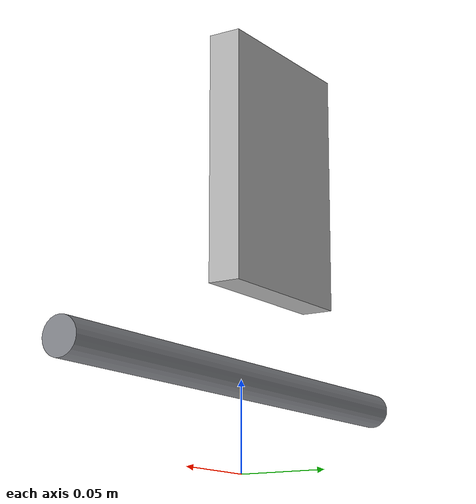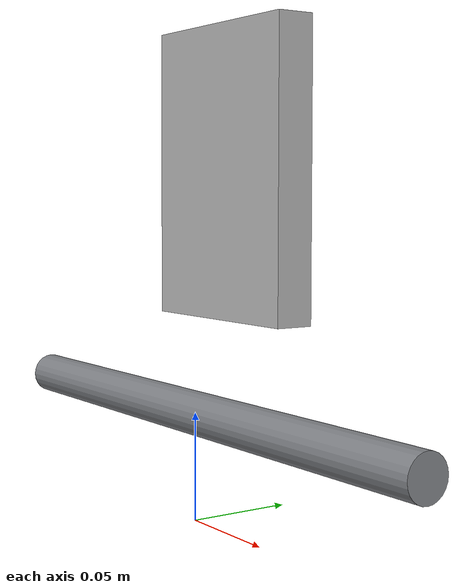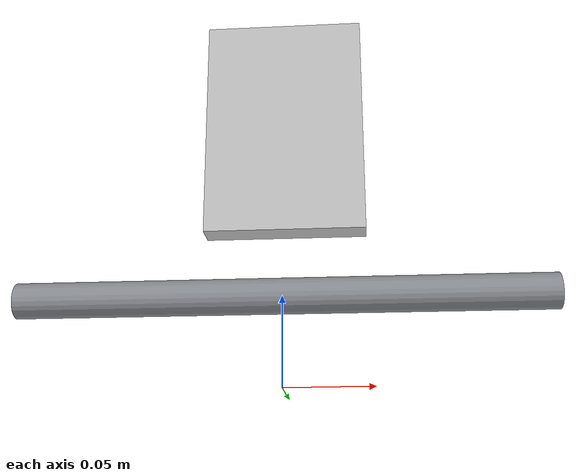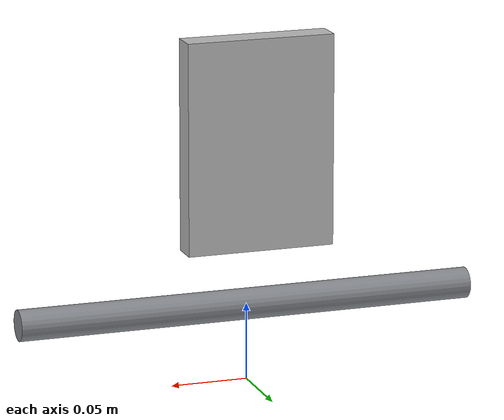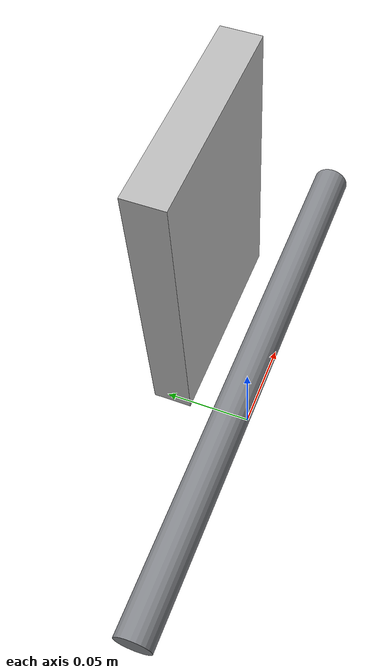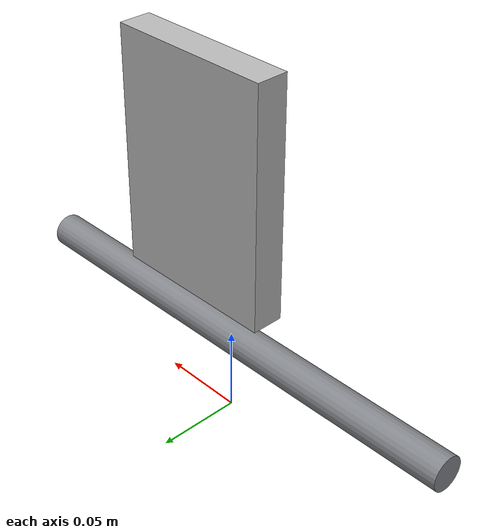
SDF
<?xml version="1.0"?>
<sdf version="1.7">
  <model name="heat_bad">
    <static>true</static>
    <link name="link">
<visual name="pipe"><pose>0 0 0.05 0 1.5708 0</pose><geometry><cylinder><radius>0.0100</radius><length>0.3000</length></cylinder></geometry><material><ambient>0.52 0.53 0.55 1</ambient><diffuse>0.52 0.53 0.55 1</diffuse></material></visual>
      <collision name="pipe_c_c"><pose>0 0 0.05 0 1.5708 0</pose><geometry><cylinder><radius>0.0100</radius><length>0.3000</length></cylinder></geometry></collision>
      <visual name="panel"><pose>0 0.020 0.1600 0 0 0</pose><geometry><box><size>0.0950 0.0180 0.1350</size></box></geometry><material><script><uri>model://heat_bad/materials/scripts</uri><uri>model://heat_bad/materials/textures</uri><name>Panel</name></script></material></visual>
      <collision name="panel_c_c"><pose>0 0.020 0.1600 0 0 0</pose><geometry><box><size>0.0950 0.0180 0.1350</size></box></geometry></collision>
    </link>
  </model>
</sdf>
